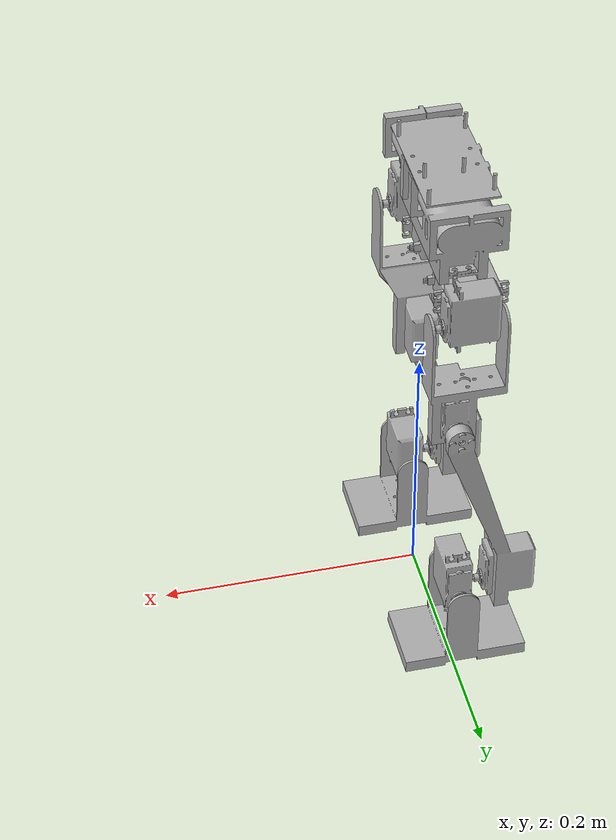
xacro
<?xml version="1.0" ?>
<robot name="URDF" xmlns:xacro="http://www.ros.org/wiki/xacro">

<xacro:include filename="$(find URDF_description)/urdf/materials.xacro" />
<xacro:include filename="$(find URDF_description)/urdf/URDF.trans" />
<xacro:include filename="$(find URDF_description)/urdf/URDF.gazebo" />
<link name="base_link">
  <inertial>
    <origin xyz="-0.011703422674285093 0.009197298171878695 0.36011121929901063" rpy="0 0 0"/>
    <mass value="2.0120152876623387"/>
    <inertia ixx="0.003383" iyy="0.001012" izz="0.002987" ixy="-2e-06" iyz="-2.2e-05" ixz="1e-06"/>
  </inertial>
  <visual>
    <origin xyz="0 0 0" rpy="0 0 0"/>
    <geometry>
      <mesh filename="package://URDF_description/meshes/base_link.stl" scale="0.001 0.001 0.001"/>
    </geometry>
    <material name="silver"/>
  </visual>
  <collision>
    <origin xyz="0 0 0" rpy="0 0 0"/>
    <geometry>
      <mesh filename="package://URDF_description/meshes/base_link.stl" scale="0.001 0.001 0.001"/>
    </geometry>
  </collision>
</link>

<link name="Component70_1_1">
  <inertial>
    <origin xyz="-0.0010554319034461381 -0.010177955025814527 0.009960515307133766" rpy="0 0 0"/>
    <mass value="0.2605710862815951"/>
    <inertia ixx="4.6e-05" iyy="7.1e-05" izz="4.2e-05" ixy="0.0" iyz="-0.0" ixz="1e-06"/>
  </inertial>
  <visual>
    <origin xyz="0.01125 0.056859 -0.300745" rpy="0 0 0"/>
    <geometry>
      <mesh filename="package://URDF_description/meshes/Component70_1_1.stl" scale="0.001 0.001 0.001"/>
    </geometry>
    <material name="silver"/>
  </visual>
  <collision>
    <origin xyz="0.01125 0.056859 -0.300745" rpy="0 0 0"/>
    <geometry>
      <mesh filename="package://URDF_description/meshes/Component70_1_1.stl" scale="0.001 0.001 0.001"/>
    </geometry>
  </collision>
</link>

<link name="Component68_1_1">
  <inertial>
    <origin xyz="-0.0013721079730014234 0.01018325708274051 0.009960041415219889" rpy="0 0 0"/>
    <mass value="0.26058347817133687"/>
    <inertia ixx="4.6e-05" iyy="7.1e-05" izz="4.2e-05" ixy="-0.0" iyz="0.0" ixz="1e-06"/>
  </inertial>
  <visual>
    <origin xyz="0.010932 -0.07264 -0.300745" rpy="0 0 0"/>
    <geometry>
      <mesh filename="package://URDF_description/meshes/Component68_1_1.stl" scale="0.001 0.001 0.001"/>
    </geometry>
    <material name="silver"/>
  </visual>
  <collision>
    <origin xyz="0.010932 -0.07264 -0.300745" rpy="0 0 0"/>
    <geometry>
      <mesh filename="package://URDF_description/meshes/Component68_1_1.stl" scale="0.001 0.001 0.001"/>
    </geometry>
  </collision>
</link>

<link name="Component69_1_1">
  <inertial>
    <origin xyz="-0.009584482225167869 0.0028920113574121657 -0.010242130854528242" rpy="0 0 0"/>
    <mass value="0.2606766909017712"/>
    <inertia ixx="4.2e-05" iyy="4.6e-05" izz="7.1e-05" ixy="1e-06" iyz="-0.0" ixz="0.0"/>
  </inertial>
  <visual>
    <origin xyz="0.011622 0.028932 -0.310987" rpy="0 0 0"/>
    <geometry>
      <mesh filename="package://URDF_description/meshes/Component69_1_1.stl" scale="0.001 0.001 0.001"/>
    </geometry>
    <material name="silver"/>
  </visual>
  <collision>
    <origin xyz="0.011622 0.028932 -0.310987" rpy="0 0 0"/>
    <geometry>
      <mesh filename="package://URDF_description/meshes/Component69_1_1.stl" scale="0.001 0.001 0.001"/>
    </geometry>
  </collision>
</link>

<link name="Component60_1_1">
  <inertial>
    <origin xyz="-0.009585821140849727 -0.0028961550072042694 -0.010249054751742925" rpy="0 0 0"/>
    <mass value="0.2606418768017664"/>
    <inertia ixx="4.2e-05" iyy="4.6e-05" izz="7.1e-05" ixy="-1e-06" iyz="0.0" ixz="0.0"/>
  </inertial>
  <visual>
    <origin xyz="0.011304 -0.045668 -0.310994" rpy="0 0 0"/>
    <geometry>
      <mesh filename="package://URDF_description/meshes/Component60_1_1.stl" scale="0.001 0.001 0.001"/>
    </geometry>
    <material name="silver"/>
  </visual>
  <collision>
    <origin xyz="0.011304 -0.045668 -0.310994" rpy="0 0 0"/>
    <geometry>
      <mesh filename="package://URDF_description/meshes/Component60_1_1.stl" scale="0.001 0.001 0.001"/>
    </geometry>
  </collision>
</link>

<link name="Component65_1_1">
  <inertial>
    <origin xyz="-0.0251080104655807 0.02053448234340218 -0.07938553469074408" rpy="0 0 0"/>
    <mass value="0.4795683297989441"/>
    <inertia ixx="0.0005" iyy="0.000461" izz="0.000198" ixy="-3e-06" iyz="0.000142" ixz="6e-06"/>
  </inertial>
  <visual>
    <origin xyz="-0.015754 0.067037 -0.300745" rpy="0 0 0"/>
    <geometry>
      <mesh filename="package://URDF_description/meshes/Component65_1_1.stl" scale="0.001 0.001 0.001"/>
    </geometry>
    <material name="silver"/>
  </visual>
  <collision>
    <origin xyz="-0.015754 0.067037 -0.300745" rpy="0 0 0"/>
    <geometry>
      <mesh filename="package://URDF_description/meshes/Component65_1_1.stl" scale="0.001 0.001 0.001"/>
    </geometry>
  </collision>
</link>

<link name="Component64_1_1">
  <inertial>
    <origin xyz="-0.029491082579910514 0.003956754157745004 -0.1016008471361318" rpy="0 0 0"/>
    <mass value="0.5723786894338777"/>
    <inertia ixx="0.001158" iyy="0.001268" izz="0.00017" ixy="1e-06" iyz="2e-06" ixz="-0.000323"/>
  </inertial>
  <visual>
    <origin xyz="0.009024 0.071577 -0.195151" rpy="0 0 0"/>
    <geometry>
      <mesh filename="package://URDF_description/meshes/Component64_1_1.stl" scale="0.001 0.001 0.001"/>
    </geometry>
    <material name="silver"/>
  </visual>
  <collision>
    <origin xyz="0.009024 0.071577 -0.195151" rpy="0 0 0"/>
    <geometry>
      <mesh filename="package://URDF_description/meshes/Component64_1_1.stl" scale="0.001 0.001 0.001"/>
    </geometry>
  </collision>
</link>

<link name="Component67_1_1">
  <inertial>
    <origin xyz="0.010148909868080274 0.0014454123231719407 0.009960061611518065" rpy="0 0 0"/>
    <mass value="0.260583085238151"/>
    <inertia ixx="7.1e-05" iyy="4.6e-05" izz="4.2e-05" ixy="0.0" iyz="-1e-06" ixz="0.0"/>
  </inertial>
  <visual>
    <origin xyz="0.018503 0.067568 -0.050446" rpy="0 0 0"/>
    <geometry>
      <mesh filename="package://URDF_description/meshes/Component67_1_1.stl" scale="0.001 0.001 0.001"/>
    </geometry>
    <material name="silver"/>
  </visual>
  <collision>
    <origin xyz="0.018503 0.067568 -0.050446" rpy="0 0 0"/>
    <geometry>
      <mesh filename="package://URDF_description/meshes/Component67_1_1.stl" scale="0.001 0.001 0.001"/>
    </geometry>
  </collision>
</link>

<link name="Component66_1_1">
  <inertial>
    <origin xyz="-0.003836025037033855 0.026087863208817785 -0.05053384808645057" rpy="0 0 0"/>
    <mass value="0.42535185084301863"/>
    <inertia ixx="0.000201" iyy="0.000374" izz="0.000441" ixy="-0.0" iyz="-0.0" ixz="-5e-06"/>
  </inertial>
  <visual>
    <origin xyz="0.008354 0.094498 -0.050446" rpy="0 0 0"/>
    <geometry>
      <mesh filename="package://URDF_description/meshes/Component66_1_1.stl" scale="0.001 0.001 0.001"/>
    </geometry>
    <material name="silver"/>
  </visual>
  <collision>
    <origin xyz="0.008354 0.094498 -0.050446" rpy="0 0 0"/>
    <geometry>
      <mesh filename="package://URDF_description/meshes/Component66_1_1.stl" scale="0.001 0.001 0.001"/>
    </geometry>
  </collision>
</link>

<link name="Component62_1_1">
  <inertial>
    <origin xyz="-0.025086134509348712 -0.019584458432280197 -0.07938591030825198" rpy="0 0 0"/>
    <mass value="0.4795660415586759"/>
    <inertia ixx="0.0005" iyy="0.000461" izz="0.000198" ixy="3e-06" iyz="-0.000142" ixz="6e-06"/>
  </inertial>
  <visual>
    <origin xyz="-0.016072 -0.082823 -0.300745" rpy="0 0 0"/>
    <geometry>
      <mesh filename="package://URDF_description/meshes/Component62_1_1.stl" scale="0.001 0.001 0.001"/>
    </geometry>
    <material name="silver"/>
  </visual>
  <collision>
    <origin xyz="-0.016072 -0.082823 -0.300745" rpy="0 0 0"/>
    <geometry>
      <mesh filename="package://URDF_description/meshes/Component62_1_1.stl" scale="0.001 0.001 0.001"/>
    </geometry>
  </collision>
</link>

<link name="Component61_1_1">
  <inertial>
    <origin xyz="-0.02949107683821049 -0.003956632577476138 -0.10160079326267805" rpy="0 0 0"/>
    <mass value="0.5723780660401575"/>
    <inertia ixx="0.001158" iyy="0.001268" izz="0.00017" ixy="-1e-06" iyz="-2e-06" ixz="-0.000323"/>
  </inertial>
  <visual>
    <origin xyz="0.008684 -0.088313 -0.195151" rpy="0 0 0"/>
    <geometry>
      <mesh filename="package://URDF_description/meshes/Component61_1_1.stl" scale="0.001 0.001 0.001"/>
    </geometry>
    <material name="silver"/>
  </visual>
  <collision>
    <origin xyz="0.008684 -0.088313 -0.195151" rpy="0 0 0"/>
    <geometry>
      <mesh filename="package://URDF_description/meshes/Component61_1_1.stl" scale="0.001 0.001 0.001"/>
    </geometry>
  </collision>
</link>

<link name="Component59_1_1">
  <inertial>
    <origin xyz="0.010216801636091533 -0.0014452836669632402 0.009959962708194825" rpy="0 0 0"/>
    <mass value="0.26058568857338693"/>
    <inertia ixx="7.1e-05" iyy="4.6e-05" izz="4.2e-05" ixy="-0.0" iyz="1e-06" ixz="0.0"/>
  </inertial>
  <visual>
    <origin xyz="0.018163 -0.084304 -0.050446" rpy="0 0 0"/>
    <geometry>
      <mesh filename="package://URDF_description/meshes/Component59_1_1.stl" scale="0.001 0.001 0.001"/>
    </geometry>
    <material name="silver"/>
  </visual>
  <collision>
    <origin xyz="0.018163 -0.084304 -0.050446" rpy="0 0 0"/>
    <geometry>
      <mesh filename="package://URDF_description/meshes/Component59_1_1.stl" scale="0.001 0.001 0.001"/>
    </geometry>
  </collision>
</link>

<link name="Component63_1_1">
  <inertial>
    <origin xyz="-0.003836011886670109 -0.025999620351600236 -0.050533600876660444" rpy="0 0 0"/>
    <mass value="0.42535393165731183"/>
    <inertia ixx="0.000201" iyy="0.000374" izz="0.000441" ixy="0.0" iyz="0.0" ixz="-5e-06"/>
  </inertial>
  <visual>
    <origin xyz="0.007946 -0.111234 -0.050446" rpy="0 0 0"/>
    <geometry>
      <mesh filename="package://URDF_description/meshes/Component63_1_1.stl" scale="0.001 0.001 0.001"/>
    </geometry>
    <material name="silver"/>
  </visual>
  <collision>
    <origin xyz="0.007946 -0.111234 -0.050446" rpy="0 0 0"/>
    <geometry>
      <mesh filename="package://URDF_description/meshes/Component63_1_1.stl" scale="0.001 0.001 0.001"/>
    </geometry>
  </collision>
</link>

<joint name="Revolute 46" type="continuous">
  <origin xyz="0.000372 -0.027927 -0.010242" rpy="0 0 0"/>
  <parent link="Component69_1_1"/>
  <child link="Component70_1_1"/>
  <axis xyz="-0.0 -1.0 -0.0"/>
</joint>

<joint name="Revolute 54" type="continuous">
  <origin xyz="0.000372 0.026972 -0.010249" rpy="0 0 0"/>
  <parent link="Component60_1_1"/>
  <child link="Component68_1_1"/>
  <axis xyz="0.0 1.0 0.0"/>
</joint>

<joint name="Revolute 64" type="continuous">
  <origin xyz="-0.011622 -0.028932 0.310987" rpy="0 0 0"/>
  <parent link="base_link"/>
  <child link="Component69_1_1"/>
  <axis xyz="-0.0 0.0 -1.0"/>
</joint>

<joint name="Revolute 65" type="continuous">
  <origin xyz="-0.011304 0.045668 0.310994" rpy="0 0 0"/>
  <parent link="base_link"/>
  <child link="Component60_1_1"/>
  <axis xyz="-0.0 0.0 -1.0"/>
</joint>

<joint name="Revolute 66" type="continuous">
  <origin xyz="0.027004 -0.010178 0.0" rpy="0 0 0"/>
  <parent link="Component70_1_1"/>
  <child link="Component65_1_1"/>
  <axis xyz="1.0 0.0 -0.0"/>
</joint>

<joint name="Revolute 67" type="continuous">
  <origin xyz="-0.024778 -0.00454 -0.105594" rpy="0 0 0"/>
  <parent link="Component65_1_1"/>
  <child link="Component64_1_1"/>
  <axis xyz="-0.0 -1.0 -0.0"/>
</joint>

<joint name="Revolute 68" type="continuous">
  <origin xyz="-0.009479 0.004009 -0.144705" rpy="0 0 0"/>
  <parent link="Component64_1_1"/>
  <child link="Component67_1_1"/>
  <axis xyz="1.0 0.0 0.0"/>
</joint>

<joint name="Revolute 69" type="continuous">
  <origin xyz="0.010149 -0.02693 0.0" rpy="0 0 0"/>
  <parent link="Component67_1_1"/>
  <child link="Component66_1_1"/>
  <axis xyz="0.0 -1.0 -0.0"/>
</joint>

<joint name="Revolute 70" type="continuous">
  <origin xyz="0.027004 0.010183 0.0" rpy="0 0 0"/>
  <parent link="Component68_1_1"/>
  <child link="Component62_1_1"/>
  <axis xyz="1.0 -0.0 -0.0"/>
</joint>

<joint name="Revolute 71" type="continuous">
  <origin xyz="-0.024756 0.00549 -0.105594" rpy="0 0 0"/>
  <parent link="Component62_1_1"/>
  <child link="Component61_1_1"/>
  <axis xyz="0.0 1.0 0.0"/>
</joint>

<joint name="Revolute 72" type="continuous">
  <origin xyz="-0.009479 -0.004009 -0.144705" rpy="0 0 0"/>
  <parent link="Component61_1_1"/>
  <child link="Component59_1_1"/>
  <axis xyz="1.0 -0.0 -0.0"/>
</joint>

<joint name="Revolute 73" type="continuous">
  <origin xyz="0.010217 0.02693 0.0" rpy="0 0 0"/>
  <parent link="Component59_1_1"/>
  <child link="Component63_1_1"/>
  <axis xyz="0.0 1.0 0.0"/>
</joint>

</robot>

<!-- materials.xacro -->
<robot name="URDF" xmlns:xacro="http://www.ros.org/wiki/xacro" >

<material name="silver">
  <color rgba="0.700 0.700 0.700 1.000"/>
</material>

</robot>

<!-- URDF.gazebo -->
<robot name="URDF" xmlns:xacro="http://www.ros.org/wiki/xacro" >

<xacro:property name="body_color" value="Gazebo/Silver" />

<gazebo>
  <plugin name="control" filename="libgazebo_ros_control.so"/>
</gazebo>
<gazebo reference="base_link">
  <material>${body_color}</material>
  <mu1>0.2</mu1>
  <mu2>0.2</mu2>
  <selfCollide>true</selfCollide>
  <gravity>true</gravity>
</gazebo>

<gazebo reference="Component70_1_1">
  <material>${body_color}</material>
  <mu1>0.2</mu1>
  <mu2>0.2</mu2>
  <selfCollide>true</selfCollide>
</gazebo>

<gazebo reference="Component68_1_1">
  <material>${body_color}</material>
  <mu1>0.2</mu1>
  <mu2>0.2</mu2>
  <selfCollide>true</selfCollide>
</gazebo>

<gazebo reference="Component69_1_1">
  <material>${body_color}</material>
  <mu1>0.2</mu1>
  <mu2>0.2</mu2>
  <selfCollide>true</selfCollide>
</gazebo>

<gazebo reference="Component60_1_1">
  <material>${body_color}</material>
  <mu1>0.2</mu1>
  <mu2>0.2</mu2>
  <selfCollide>true</selfCollide>
</gazebo>

<gazebo reference="Component65_1_1">
  <material>${body_color}</material>
  <mu1>0.2</mu1>
  <mu2>0.2</mu2>
  <selfCollide>true</selfCollide>
</gazebo>

<gazebo reference="Component64_1_1">
  <material>${body_color}</material>
  <mu1>0.2</mu1>
  <mu2>0.2</mu2>
  <selfCollide>true</selfCollide>
</gazebo>

<gazebo reference="Component67_1_1">
  <material>${body_color}</material>
  <mu1>0.2</mu1>
  <mu2>0.2</mu2>
  <selfCollide>true</selfCollide>
</gazebo>

<gazebo reference="Component66_1_1">
  <material>${body_color}</material>
  <mu1>0.2</mu1>
  <mu2>0.2</mu2>
  <selfCollide>true</selfCollide>
</gazebo>

<gazebo reference="Component62_1_1">
  <material>${body_color}</material>
  <mu1>0.2</mu1>
  <mu2>0.2</mu2>
  <selfCollide>true</selfCollide>
</gazebo>

<gazebo reference="Component61_1_1">
  <material>${body_color}</material>
  <mu1>0.2</mu1>
  <mu2>0.2</mu2>
  <selfCollide>true</selfCollide>
</gazebo>

<gazebo reference="Component59_1_1">
  <material>${body_color}</material>
  <mu1>0.2</mu1>
  <mu2>0.2</mu2>
  <selfCollide>true</selfCollide>
</gazebo>

<gazebo reference="Component63_1_1">
  <material>${body_color}</material>
  <mu1>0.2</mu1>
  <mu2>0.2</mu2>
  <selfCollide>true</selfCollide>
</gazebo>

</robot>
